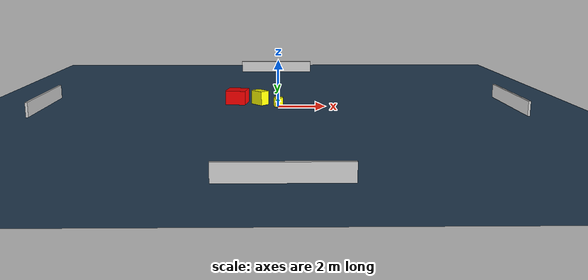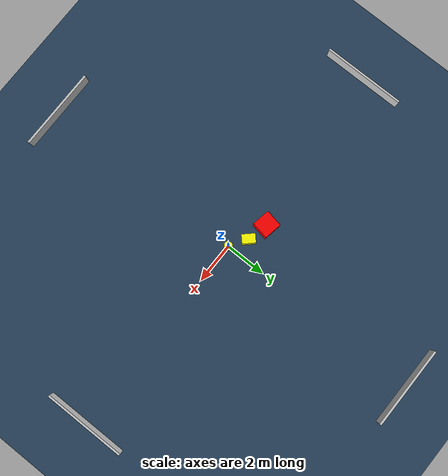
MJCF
<?xml version="1.0" ?>
<mujoco model="generated_environment">
  <option timestep="0.01" integrator="RK4" cone="elliptic"/>
  <default>
    <geom density="1"/>
  </default>
  <asset>
    <texture builtin="gradient" height="3072" name="skybox" rgb1="0.3 0.5 0.7" rgb2="0 0 0" type="skybox" width="512"/>
    <texture builtin="checker" height="300" name="groundplane" rgb1="0.2 0.3 0.4" rgb2="0.1 0.2 0.3" type="2d" width="300"/>
    <material name="groundplane" reflectance="0.2" texrepeat="5 5" texture="groundplane"/>
  </asset>
  <worldbody>
    <light dir="0 0 -1" directional="true" pos="0 0 1.5"/>
    <geom condim="3" friction="0.5 0.005 0.001" material="groundplane" name="floor" pos="0 0 0" size="0 0 0.05" type="plane"/>
    <body name="walls">
      <geom name="wall_1" condim="4" pos="-10.0 0.0 0.3" rgba="0.800000011920929 0.800000011920929 0.800000011920929 1.0" size="0.05 2.0 0.3" type="box"/>
      <geom name="wall_2" condim="4" pos="10.0 0.0 0.3" rgba="0.800000011920929 0.800000011920929 0.800000011920929 1.0" size="0.05 2.0 0.3" type="box"/>
      <geom name="wall_3" condim="4" pos="0.0 -10.0 0.3" rgba="0.800000011920929 0.800000011920929 0.800000011920929 1.0" size="2.0 0.05 0.3" type="box"/>
      <geom name="wall_4" condim="4" pos="0.0 10.0 0.3" rgba="0.800000011920929 0.800000011920929 0.800000011920929 1.0" size="2.0 0.05 0.3" type="box"/>
    </body>
    <body name="robot">
      <joint name="joint_x" type="slide" pos="0 0 0" axis="1 0 0"/>
      <joint name="joint_y" type="slide" pos="0 0 0" axis="0 1 0"/>
      <geom name="robot" type="cylinder" pos="0.0 0.0 0.2" size="0.2 0.2 0.0" mass="5.0" friction="1.0 0.005 0.0001" condim="4" rgba="1.0 1.0 0.0 1.0"/>
    </body>
    <body name="obstacle_1_movable">
      <geom name="obstacle_1_movable" condim="4" pos="-0.7981755003831363 0.5222117974451957 0.3" euler="0 0 133.38348544178493" friction="0.0 0.005 0.001" rgba="1.0 1.0 0.0 1.0" size="0.3166098748741438 0.21777886495479576 0.3" type="box" mass="0.1"/>
      <joint type="free"/>
    </body>
    <body name="obstacle_2_static">
      <geom name="obstacle_2_static" condim="4" pos="-1.8039504543804141 0.7665297352511178 0.3" euler="0 0 169.75799650768818" friction="0.0 0.005 0.001" rgba="1.0 0.0 0.0 1.0" size="0.4346369750446434 0.42070921596090555 0.3" type="box"/>
    </body>
  </worldbody>
  <actuator>
    <motor name="actuator_x" joint="joint_x" gear="1" ctrlrange="-1 1"/>
    <motor name="actuator_y" joint="joint_y" gear="1" ctrlrange="-1 1"/>
  </actuator>
</mujoco>
